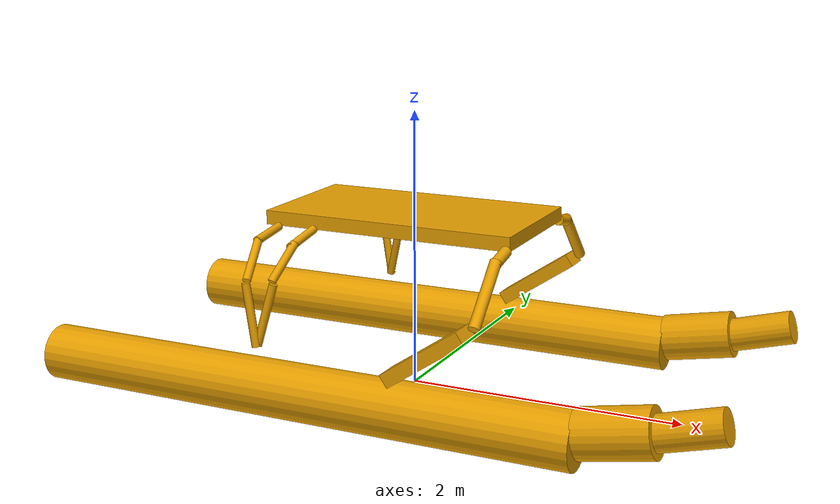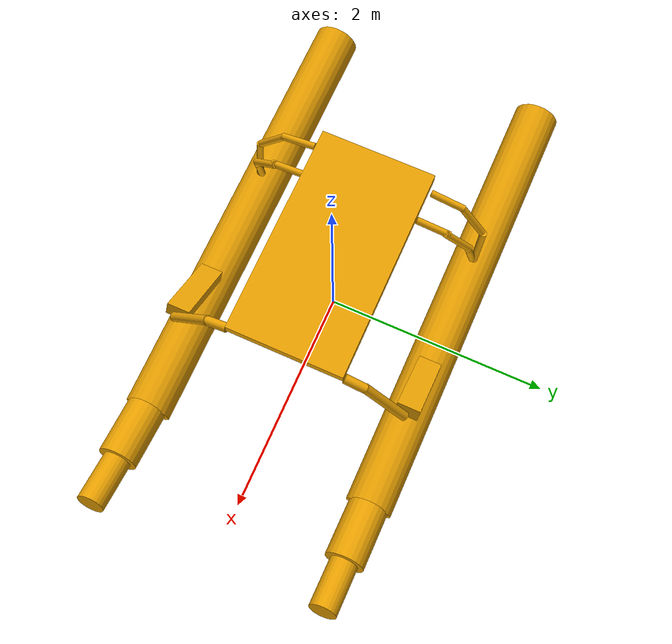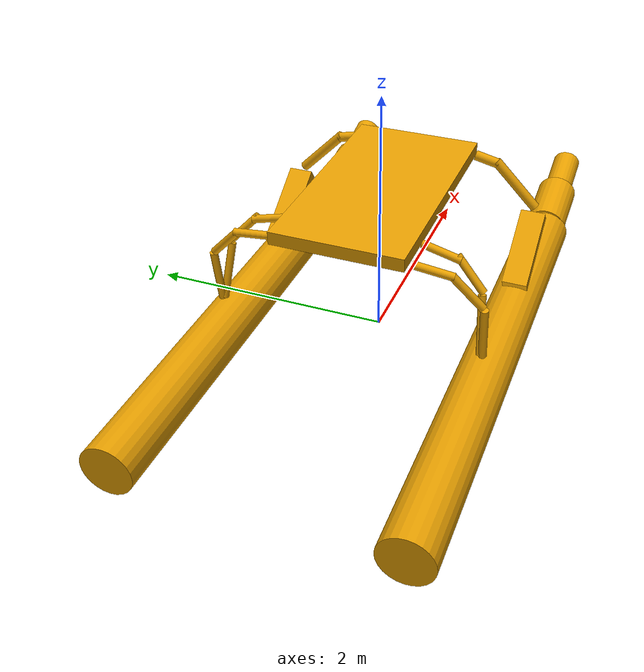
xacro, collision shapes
<?xml version="1.0"?>
<robot xmlns:xacro="http://ros.org/wiki/xacro" name="wam-v">
  <!-- Required arg for melodic and kinetic... -->
  <xacro:arg name="namespace" default="wamv"/>
  <xacro:arg name="scale" default="1.0"/>
  <xacro:property name="namespace" value="$(arg namespace)" scope="global" />
  <xacro:property name="scale" value="$(arg scale)" />
  <!-- Macro for creating the main collisions as simple shapes. -->
  <xacro:macro name="main_collisions" params="prefix reflect:=1">
    <!-- Main float -->
    <collision name="${prefix}_float">
      <origin xyz="${-0.4*scale} ${1.03*scale*reflect} ${0.2*scale}" rpy="${0*reflect} 1.57 0" />
      <geometry>
        <cylinder length="${4.0*scale}" radius="${0.2*scale}" />
      </geometry>
    </collision>

    <collision name="${prefix}_mid_float">
      <origin xyz="${1.85*scale} ${1.03*scale*reflect} ${0.3*scale}" rpy="${0*reflect} 1.38 0" />
      <geometry>
        <cylinder length="${0.5*scale}" radius="${0.17*scale}" />
      </geometry>
    </collision>
    <collision name="${prefix}_front_float">
      <origin xyz="${2.3*scale} ${1.03*scale*reflect} ${0.4*scale}" rpy="${0*reflect} 1.3 0" />
      <geometry>
        <cylinder length="${0.45*scale}" radius="${0.12*scale}" />
      </geometry>
    </collision>

    <!-- Front beam -->
    <collision name="front_${prefix}_beam_lower">
      <origin xyz="${0.9*scale} ${0.85*scale*reflect} ${1.0*scale}" rpy="${0.78*reflect} 0 0" />
      <geometry>
        <cylinder length="${0.5*scale}" radius="${0.04*scale}" />
      </geometry>
    </collision>

    <collision name="front_${prefix}_beam_upper">
      <origin xyz="${0.9*scale} ${0.6*scale*reflect} ${1.18*scale}" rpy="${1.35*reflect} 0 0" />
      <geometry>
        <cylinder length="${0.2*scale}" radius="${0.04*scale}" />
      </geometry>
    </collision>

    <!-- Mid beam -->
    <collision name="mid_${prefix}_beam_lower">
      <origin xyz="${-0.65*scale} ${0.99*scale*reflect} ${0.7*scale}" rpy="${0.1*reflect} 0.25 0" />
      <geometry>
        <cylinder length="${0.45*scale}" radius="${0.03*scale}" />
      </geometry>
    </collision>

    <collision name="mid_${prefix}_beam_medium">
      <origin xyz="${-0.57*scale} ${0.87*scale*reflect} ${1.05*scale}" rpy="${0.75*reflect} 0.25 0" />
      <geometry>
        <cylinder length="${0.32*scale}" radius="${0.03*scale}" />
      </geometry>
    </collision>

    <collision name="mid_${prefix}_beam_upper">
      <origin xyz="${-0.55*scale} ${0.65*scale*reflect} ${1.17*scale}" rpy="${1.35*reflect} 0.25 0" />
      <geometry>
        <cylinder length="${0.3*scale}" radius="${0.03*scale}" />
      </geometry>
    </collision>

    <!-- Rear beam -->
    <collision name="rear_${prefix}_beam_lower">
      <origin xyz="${-0.74*scale} ${1.03*scale*reflect} ${0.7*scale}" rpy="${0*reflect} -0.15 0" />
      <geometry>
        <cylinder length="${0.45*scale}" radius="${0.03*scale}" />
      </geometry>
    </collision>

    <collision name="rear_${prefix}_beam_medium">
      <origin xyz="${-0.79*scale} ${0.91*scale*reflect} ${1.05*scale}" rpy="${0.75*reflect} -0.15 0" />
      <geometry>
        <cylinder length="${0.32*scale}" radius="${0.03*scale}" />
      </geometry>
    </collision>

    <collision name="rear_${prefix}_beam_upper">
      <origin xyz="${-0.81*scale} ${0.67*scale*reflect} ${1.18*scale}" rpy="${1.45*reflect} -0.15 0" />
      <geometry>
        <cylinder length="${0.3*scale}" radius="${0.03*scale}" />
      </geometry>
    </collision>

    <!-- Joint -->
    <collision name="${prefix}_joint">
      <origin xyz="${0.58*scale} ${1.03*scale*reflect} ${0.6*scale}" rpy="${0*reflect} -0.6 0" />
      <geometry>
        <box size="${0.65*scale} ${0.2*scale} ${0.1*scale}" />
      </geometry>
    </collision>
  </xacro:macro>

  <!-- Basic model of the 16' WAM-V USV -->
  <link name="${namespace}/base_link">
    <visual>
      <geometry>
        <mesh filename="package://wamv_description/models/WAM-V-Base/mesh/WAM-V-Base.dae"
          scale="${scale} ${scale} ${scale}" />
      </geometry>
    </visual>

    <!-- Left base collisions -->
    <xacro:main_collisions prefix="left" reflect="1"/>

    <!-- Right side collisions -->
    <xacro:main_collisions prefix="right" reflect="-1" />

     <!-- Top base -->
    <collision name="top_base">
      <origin xyz="0 -0 ${1.25*scale}" rpy="0 0 0" />
      <geometry>
        <box size="${1.85*scale} ${1.0*scale} ${0.1*scale}" />
      </geometry>
    </collision>

    <inertial>
      <!-- From WAM-V spec sheet -->
      <mass value="${180.0*scale*scale*scale}"/>
      <inertia ixx="${120.0*scale*scale*scale*scale*scale}" ixy="0.0" ixz="0.0" iyy="${393.0*scale*scale*scale*scale*scale}" iyz="0.0" izz="${446.0*scale*scale*scale*scale*scale}"/>
    </inertial>
  </link>

  <gazebo>
    <enable_wind>true</enable_wind>
  </gazebo>

  <gazebo reference="${namespace}/base_link">
    <visual>
      <material>
        <diffuse>1.0 1.0 1.0</diffuse>
        <specular>1.0 1.0 1.0</specular>
        <pbr>
          <metal>
            <albedo_map>model://wamv_description/models/WAM-V-Base/mesh/WAM-V_Albedo.png</albedo_map>
            <normal_map>model://wamv_description/models/WAM-V-Base/mesh/WAM-V_Normal.png</normal_map>
            <roughness_map>model://wamv_description/models/WAM-V-Base/mesh/WAM-V_Roughness.png</roughness_map>
            <metalness_map>model://wamv_description/models/WAM-V-Base/mesh/WAM-V_Metalness.png</metalness_map>
          </metal>
        </pbr>
      </material>
    </visual>

    <sensor type="contact" name="contact_sensor">
      <contact>
        <!-- collisions are renamed during urdf -> sdf fixed joint lumping -->
        <collision>${namespace}/base_link_fixed_joint_lump__top_base_collision_24</collision>
        <collision>${namespace}/base_link_fixed_joint_lump__left_float_collision</collision>
        <collision>${namespace}/base_link_fixed_joint_lump__left_mid_float_collision_1</collision>
        <collision>${namespace}/base_link_fixed_joint_lump__left_front_float_collision_2</collision>
        <collision>${namespace}/base_link_fixed_joint_lump__right_float_collision_12</collision>
        <collision>${namespace}/base_link_fixed_joint_lump__right_mid_float_collision_13</collision>
        <collision>${namespace}/base_link_fixed_joint_lump__right_front_float_collision_14</collision>
        <topic>/vrx/contacts</topic>
      </contact>
      <always_on>1</always_on>
      <update_rate>5</update_rate>
    </sensor>
  </gazebo>

</robot>
